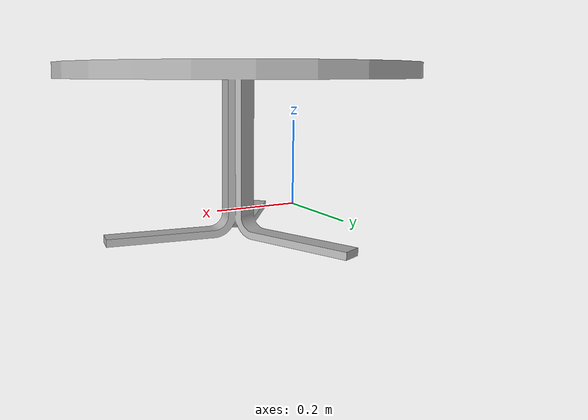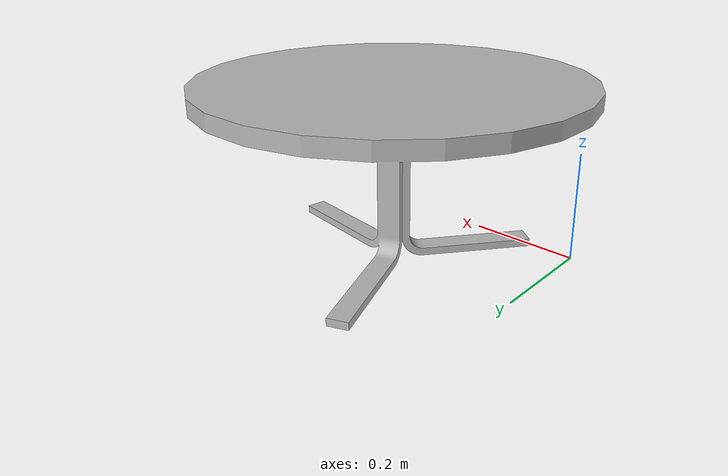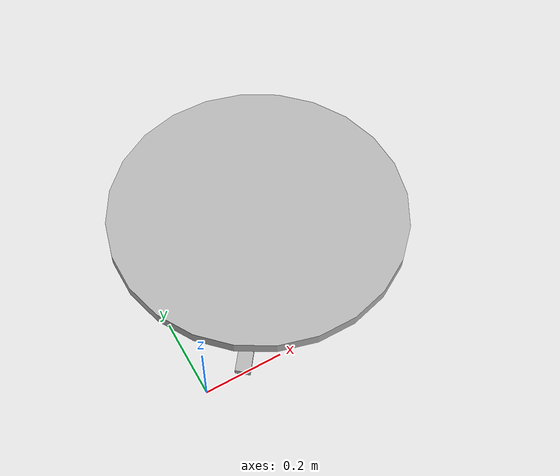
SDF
<?xml version="1.0" ?>
<sdf version="1.6">
  <model name="table">
    <static>true</static>
    <link name="link">
      <visual name="visual">
        <pose>0.25 0.2 0.1 1.570796 0 -1.570796</pose>
        <geometry>
          <mesh>
            <scale>1 1 1</scale>
            <uri>model://table/models/model_normalized.obj</uri>
          </mesh>
        </geometry>
      </visual>
    </link>
  </model>
</sdf>
